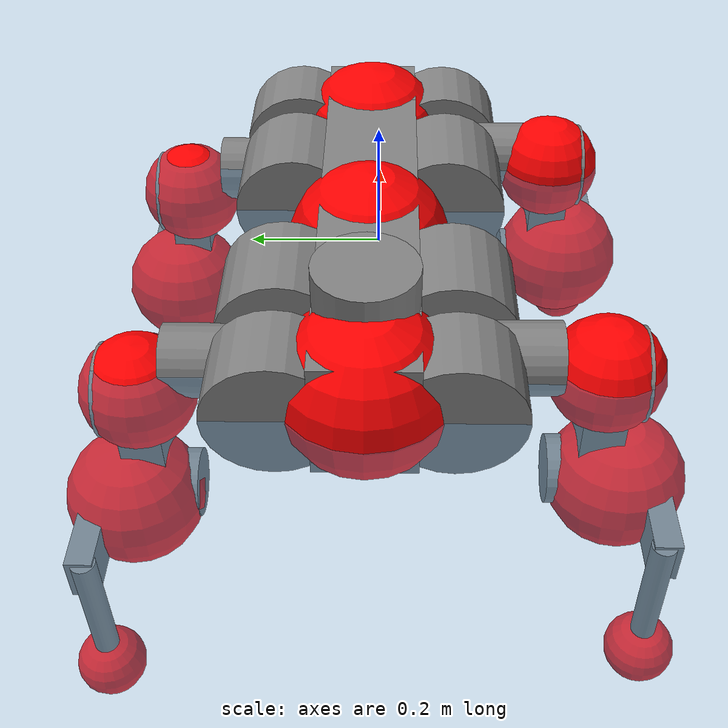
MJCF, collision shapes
<mujoco model="anymal_c">
  <compiler angle="radian" assetdir="assets" balanceinertia="true" inertiafromgeom="false"/>

  <option timestep="0.005" density="1.2" viscosity="2e-05"/>

  <size nkey="1"/>

  <visual>
    <quality shadowsize="8192"/>
    <map shadowclip="0.5"/>
  </visual>

  <default>
    <default class="/">
      <material specular="0" shininess="0.25"/>
      <geom contype="0" conaffinity="0" group="1" solref="-1000 -80"/>
      <site size="0.01 0.005 0.005" group="5"/>
      <general forcelimited="true" forcerange="-80 80" biastype="affine" gainprm="80" biasprm="0 -80 -2"/>
      <default class="anymal_c">
        <joint armature="0.01" damping="0.01" frictionloss="0.1"/>
        <default class="visual">
          <geom type="mesh" group="2"/>
          <default class="visual_zflip"/>
        </default>
        <default class="collision">
          <geom type="cylinder" group="3"/>
          <default class="foot">
            <geom size="0.03 0 0" type="sphere" condim="6" priority="1" friction="0.8 0.02 0.01" solimp="0.015 1 0.03"/>
          </default>
        </default>
      </default>
      <default class="reward_collision_sphere">
        <geom group="5" rgba="1 0 0 1"/>
      </default>
    </default>
  </default>

  <asset>
    <texture type="skybox" colorspace="auto" name="//unnamed_texture_0" builtin="gradient" rgb1="0.95 0.95 0.95" rgb2="0.95 0.95 0.95" width="100" height="600"/>
    <texture type="2d" colorspace="auto" name="texplane" builtin="checker" rgb1="0.345 0.575 0.748" rgb2="0.345 0.575 0.748" markrgb="1 1 1" width="512" height="512"/>
    <texture type="2d" colorspace="linear" name="base" file="base.png"/>
    <texture type="2d" colorspace="linear" name="top_shell" file="top_shell.png"/>
    <texture type="2d" colorspace="linear" name="bottom_shell" file="bottom_shell.png"/>
    <texture type="2d" colorspace="linear" name="remote" file="remote.png"/>
    <texture type="2d" colorspace="linear" name="hatch" file="hatch.png"/>
    <texture type="2d" colorspace="linear" name="handle" file="handle.png"/>
    <texture type="2d" colorspace="linear" name="face" file="face.png"/>
    <texture type="2d" colorspace="linear" name="battery" file="battery.png"/>
    <texture type="2d" colorspace="linear" name="lidar_cage" file="lidar_cage.png"/>
    <texture type="2d" colorspace="linear" name="depth_camera" file="depth_camera.png"/>
    <texture type="2d" colorspace="linear" name="wide_angle_camera" file="wide_angle_camera.png"/>
    <texture type="2d" colorspace="linear" name="lidar" file="lidar.png"/>
    <texture type="2d" colorspace="linear" name="drive" file="drive.png"/>
    <texture type="2d" colorspace="linear" name="hip_l" file="hip_l.png"/>
    <texture type="2d" colorspace="linear" name="shank_l" file="shank_l.png"/>
    <texture type="2d" colorspace="linear" name="foot" file="foot.png"/>
    <texture type="2d" colorspace="linear" name="thigh" file="thigh.png"/>
    <texture type="2d" colorspace="linear" name="shank_r" file="shank_r.png"/>
    <texture type="2d" colorspace="linear" name="hip_r" file="hip_r.png"/>
    <material name="MatPlane" class="/" texture="texplane" texuniform="true" texrepeat="2 2" specular="0.9" shininess="0.5"/>
    <material name="black_plastic" class="/" rgba="0.007 0.007 0.007 1"/>
    <material name="green" class="/" rgba="0.052 0.178 0.033 1"/>
    <material name="red" class="/" rgba="0.178 0.006 0.005 1"/>
    <material name="yellow" class="/" rgba="0.178 0.119 0.006 1"/>
    <material name="lwl" class="/" rgba="0.8 0.8 0.8 1"/>
    <material name="base" class="/" texture="base"/>
    <material name="top_shell" class="/" texture="top_shell"/>
    <material name="bottom_shell" class="/" texture="bottom_shell"/>
    <material name="hip_l" class="/" texture="hip_l"/>
    <material name="thigh" class="/" texture="thigh"/>
    <material name="shank_l" class="/" texture="shank_l"/>
    <material name="foot" class="/" texture="foot"/>
    <material name="hip_r" class="/" texture="hip_r"/>
    <material name="shank" class="/" texture="shank_r"/>
    <material name="hatch" class="/" texture="hatch"/>
    <material name="remote" class="/" texture="remote"/>
    <material name="handle" class="/" texture="handle"/>
    <material name="face" class="/" texture="face"/>
    <material name="depth_camera" class="/" texture="depth_camera"/>
    <material name="wide_angle_camera" class="/" texture="wide_angle_camera"/>
    <material name="battery" class="/" texture="battery"/>
    <material name="lidar_cage" class="/" texture="lidar_cage"/>
    <material name="lidar" class="/" texture="lidar"/>
    <material name="drive" class="/" texture="drive"/>
    <mesh name="base_0" class="/" file="base_0.obj"/>
    <mesh name="base_1" class="/" file="base_1.obj"/>
    <mesh name="base_2" class="/" file="base_2.obj"/>
    <mesh name="base_3" class="/" file="base_3.obj"/>
    <mesh name="base_4" class="/" file="base_4.obj"/>
    <mesh name="base_5" class="/" file="base_5.obj"/>
    <mesh name="top_shell" class="/" file="top_shell.obj"/>
    <mesh name="bottom_shell" class="/" file="bottom_shell.obj"/>
    <mesh name="remote" class="/" file="remote.obj"/>
    <mesh name="handle" class="/" file="handle.obj"/>
    <mesh name="face" class="/" file="face.obj"/>
    <mesh name="wide_angle_camera" class="/" file="wide_angle_camera.obj"/>
    <mesh name="depth_camera" class="/" file="depth_camera.obj"/>
    <mesh name="battery" class="/" file="battery.obj"/>
    <mesh name="lidar_cage" class="/" file="lidar_cage.obj"/>
    <mesh name="lidar" class="/" file="lidar.obj"/>
    <mesh name="drive" class="/" file="drive.obj"/>
    <mesh name="hip_l" class="/" file="hip_l.obj"/>
    <mesh name="thigh" class="/" file="thigh.obj"/>
    <mesh name="shank_l" class="/" file="shank_l.obj"/>
    <mesh name="foot" class="/" file="foot.obj"/>
    <mesh name="hip_r" class="/" file="hip_r.obj"/>
    <mesh name="hatch" class="/" file="hatch.obj"/>
    <mesh name="shank_r" class="/" file="shank_r.obj"/>
  </asset>

  <worldbody>
    <geom name="floor" class="/" size="100 100 0.125" type="plane" group="0" material="MatPlane"/>
    <light name="toplight_shadow" class="/" pos="0 0 5" dir="0.0990148 0.0990148 -0.990148" type="directional" ambient="0.04 0.04 0.04" diffuse="0.55 0.55 0.55" specular="0.12 0.12 0.12"/>
    <light name="toplight_fill" class="/" pos="0 0 5" dir="0.0990148 0.0990148 -0.990148" type="directional" castshadow="false" ambient="0.04 0.04 0.04" diffuse="0.3 0.3 0.3" specular="0.08 0.08 0.08"/>
    <body name="trunk" childclass="anymal_c" pos="0.00239323 0.0149007 -0.00520709" quat="1 0.000217401 0.000171701 -5.34985e-05">
      <inertial pos="-0.00691997 0.0156546 0.0396884" quat="0.556985 0.514924 0.421879 0.496628" mass="23.6945" diaginertia="0.141279 13.4308 0.0386463"/>
      <joint name="//unnamed_joint_0" type="free" armature="0" damping="0" frictionloss="0"/>
      <geom name="//unnamed_geom_1" class="visual" material="green" mesh="base_0"/>
      <geom name="//unnamed_geom_2" class="visual" material="yellow" mesh="base_1"/>
      <geom name="//unnamed_geom_3" class="visual" material="red" mesh="base_2"/>
      <geom name="//unnamed_geom_4" class="visual" material="black_plastic" mesh="base_3"/>
      <geom name="//unnamed_geom_5" class="visual" material="lwl" mesh="base_4"/>
      <geom name="//unnamed_geom_6" class="visual" material="base" mesh="base_5"/>
      <geom name="trunk_1" class="collision" size="0.310564 0.0749638 0.0963821" type="box"/>
      <geom name="trunk_2" class="collision" size="0.0963821 0.0776411" pos="0.157286 0.124575 0" quat="0.707107 0 0.707107 0"/>
      <geom name="trunk_3" class="collision" size="0.0963821 0.0776411" pos="-0.157286 0.124575 0" quat="0.707107 0 0.707107 0"/>
      <geom name="trunk_4" class="collision" size="0.0963821 0.0776411" pos="0.157286 -0.124575 0" quat="0.707107 0 0.707107 0"/>
      <geom name="trunk_5" class="collision" size="0.0963821 0.0776411" pos="-0.157286 -0.124575 0" quat="0.707107 0 0.707107 0"/>
      <geom name="//unnamed_geom_12" class="visual" material="top_shell" mesh="top_shell"/>
      <geom name="//unnamed_geom_13" class="visual" material="bottom_shell" mesh="bottom_shell"/>
      <geom name="//unnamed_geom_14" class="visual" material="remote" mesh="remote"/>
      <geom name="//unnamed_geom_15" class="visual" material="handle" mesh="handle"/>
      <geom name="//unnamed_geom_16" class="visual" pos="0.299748 0 0" quat="1 0 0 0" material="face" mesh="face"/>
      <geom name="trunk_6" class="collision" size="0.0589002 0.0749638 0.0963821" pos="0.339522 0 0" type="box"/>
      <geom name="//unnamed_geom_18" class="collision" size="0.0963821 0.0589002" pos="0.339522 0.124575 0" quat="0.707107 0 0.707107 0"/>
      <geom name="//unnamed_geom_19" class="collision" size="0.0963821 0.0589002" pos="0.339522 -0.124575 0" quat="0.707107 0 0.707107 0"/>
      <geom name="//unnamed_geom_20" class="visual" pos="0.333844 0 -0.0206297" quat="0.965926 0 0.258819 0" material="depth_camera" mesh="depth_camera"/>
      <geom name="//unnamed_geom_21" class="visual" pos="0.370979 0 0.0106278" material="wide_angle_camera" mesh="wide_angle_camera"/>
      <geom name="//unnamed_geom_22" class="visual_zflip" pos="-0.299748 0 0" quat="0 0 0 1" material="face" mesh="face"/>
      <geom name="trunk_7" class="collision" size="0.0589002 0.0749638 0.0963821" pos="-0.339522 0 0" quat="0 0 0 1" type="box"/>
      <geom name="//unnamed_geom_24" class="collision" size="0.0963821 0.0589002" pos="-0.339522 -0.124575 0" quat="0 -0.707107 0 0.707107"/>
      <geom name="//unnamed_geom_25" class="collision" size="0.0963821 0.0589002" pos="-0.339522 0.124575 0" quat="0 -0.707107 0 0.707107"/>
      <geom name="//unnamed_geom_26" class="visual" pos="-0.333844 0 -0.0206297" quat="0 -0.258819 0 0.965926" material="depth_camera" mesh="depth_camera"/>
      <geom name="//unnamed_geom_27" class="visual_zflip" pos="-0.370979 0 0.0106278" quat="0 0 0 1" material="wide_angle_camera" mesh="wide_angle_camera"/>
      <geom name="//unnamed_geom_28" class="visual" material="battery" mesh="battery"/>
      <geom name="//unnamed_geom_29" class="visual" pos="0 0.149934 0.0207241" quat="0.683013 -0.183013 0.183013 0.683013" material="depth_camera" mesh="depth_camera"/>
      <geom name="//unnamed_geom_30" class="visual" pos="0 -0.149934 0.0207241" quat="0.683013 0.183013 0.183013 -0.683013" material="depth_camera" mesh="depth_camera"/>
      <geom name="//unnamed_geom_31" class="visual" pos="-0.263229 0 0.0521804" quat="1 0 0 0" material="lidar_cage" mesh="lidar_cage"/>
      <geom name="trunk_8" class="collision" size="0.0749638 0.0642547" pos="-0.263229 0 0.0947766"/>
      <geom name="//unnamed_geom_33" class="visual" pos="-0.263229 0.000415065 0.100953" quat="0.707107 0 0 -0.707107" material="lidar" mesh="lidar"/>
      <geom name="//unnamed_geom_34" class="visual" pos="0.216874 0.184703 1.84525e-08" quat="0.258819 0.965926 0 0" material="drive" mesh="drive"/>
      <geom name="//unnamed_geom_35" class="visual" pos="0.216874 -0.184703 -1.84525e-08" quat="0.258819 -0.965926 0 0" material="drive" mesh="drive"/>
      <geom name="//unnamed_geom_36" class="visual" pos="-0.216874 0.184703 -1.84525e-08" quat="0 0 0.965926 -0.258819" material="drive" mesh="drive"/>
      <geom name="//unnamed_geom_37" class="visual" pos="-0.216874 -0.184703 1.84525e-08" quat="0 0 -0.965926 -0.258819" material="drive" mesh="drive"/>
      <geom name="//unnamed_geom_38" class="visual" pos="0.0838861 0 0.0518254" quat="1 0 0 0" material="hatch" mesh="hatch"/>
      <geom name="//unnamed_geom_39" class="reward_collision_sphere" size="0.128509"/>
      <geom name="//unnamed_geom_40" class="reward_collision_sphere" size="0.128509" pos="0.32542 0 0"/>
      <geom name="//unnamed_geom_41" class="reward_collision_sphere" size="0.128509" pos="-0.32542 0 0"/>
      <site name="imu" pos="0.107104 -0.0460145 0.107278" size="0.0107091"/>
      <camera name="track" pos="0 -3.55929 0" quat="0.707107 0.707107 0 0" mode="trackcom"/>
      <camera name="ego_camera" pos="0.32542 0 -0.0283975" quat="-0.5 -0.5 0.5 0.5"/>
      <body name="LF_HIP" pos="0.203539 0.165961 -0.0168397" quat="0.259457 0.965724 0.00145982 -0.00750205">
        <inertial pos="0.0473214 -0.025961 -0.0172431" quat="-0.122105 0.723242 -0.151514 0.662612" mass="4.23122" diaginertia="0.00112143 0.0951623 0.000561222"/>
        <joint name="LF_HAA" pos="0 0 0" axis="0.999999 -0.00141729 -0.000728076" range="-1.1088 0.255414" armature="0.013794" damping="0.0841028" frictionloss="0.0349371"/>
        <geom name="//unnamed_geom_42" class="visual" pos="0 0.00108548 -0.000178289" quat="0.258819 -0.965926 0 0" material="hip_l" mesh="hip_l"/>
        <geom name="//unnamed_geom_43" class="visual" pos="0.043317 -0.066018 -0.0302034" quat="0.183013 -0.683013 0.683013 0.183013" material="drive" mesh="drive"/>
        <geom name="//unnamed_geom_44" class="collision" size="0.0535456 0.0749638" pos="0.043317 -0.0212842 -0.00490212" quat="-0.353553 -0.612372 0.612372 -0.353553"/>
        <body name="LF_THIGH" pos="0.040737 -0.14838 -0.0226079" quat="0.188173 -0.679232 0.684793 0.185185">
          <inertial pos="0.0083184 -0.0125514 -0.180801" quat="0.993212 0.0236156 -0.1129 0.0150146" mass="3.75227" diaginertia="0.00527727 0.494538 0.000791709"/>
          <joint name="LF_HFE" pos="0 0 0" axis="0.997129 0.0735976 0.017824" range="-3.36083 2.78904" armature="0.0023621" damping="0" frictionloss="0.0550332"/>
          <geom name="//unnamed_geom_45" class="visual" pos="-0.0210199 -3.31225e-05 0" quat="0.707107 0 0 -0.707107" material="thigh" mesh="thigh"/>
          <geom name="//unnamed_geom_46" class="collision" size="0.0696093 0.0428365" pos="0.0289262 0 0" quat="0.5 0.5 -0.5 -0.5"/>
          <geom name="//unnamed_geom_47" class="collision" size="0.0401592 0.0321274 0.151335" pos="0.0216947 0 -0.100324" quat="0.707107 0 0 -0.707107" type="box"/>
          <geom name="//unnamed_geom_48" class="visual" pos="0.0725325 0 -0.202332" quat="1 0 0 0" material="drive" mesh="drive"/>
          <geom name="//unnamed_geom_49" class="collision" size="0.0535456 0.0749638" pos="0.0219116 0 -0.202332" quat="0.707107 0 0.707107 0"/>
          <geom name="//unnamed_geom_50" class="reward_collision_sphere" size="0.085673" pos="0.0180789 0 0"/>
          <body name="LF_SHANK" pos="0.0814961 0.0173906 -0.192616" quat="0.999983 -0.00397222 0.00398132 0.00165754">
            <inertial pos="-0.00924777 -0.109897 -0.0385687" quat="0.994008 -0.106009 -0.00722405 -0.0256501" mass="0.751656" diaginertia="0.00230505 0.123986 0.000240186"/>
            <joint name="LF_KFE" pos="0 0 0" axis="0.999868 0.0119398 0.0110056" range="-2.77106 3.08268" armature="0.0172033" damping="0.0249699" frictionloss="0.116582"/>
            <geom name="//unnamed_geom_51" class="visual" pos="-0.00685414 -0.0365466 0" quat="0.707107 0 0 -0.707107" material="shank_l" mesh="shank_l"/>
            <geom name="LF_kfe_act" class="collision" size="0.0642547 0.0214182" pos="0.0144631 0 0" quat="0.5 0.5 -0.5 -0.5"/>
            <geom name="//unnamed_geom_53" class="collision" size="0.0615764 0.0361433 0.0203473" pos="0.0144631 -0.102328 0" quat="0.5 0.5 -0.5 -0.5" type="box"/>
            <geom name="//unnamed_geom_54" class="visual" pos="0.00943884 -0.168297 -0.239938" quat="0.382683 0 0 -0.92388" material="foot" mesh="foot"/>
            <geom name="LF_calf" class="collision" size="0.018741 0.151268" pos="0.00943718 -0.15652 -0.119969" quat="0.707107 0 0 -0.707107"/>
            <geom name="LF_foot" class="foot" size="0.0345773" pos="0.00943718 -0.15652 -0.223964" quat="0.707107 0 0 -0.707107"/>
            <geom name="//unnamed_geom_57" class="reward_collision_sphere" size="0.107091" pos="-0.0361578 0 0"/>
            <geom name="//unnamed_geom_58" class="reward_collision_sphere" size="0.0535456" pos="0.00943718 -0.15652 -0.223964"/>
            <site name="LF_foot" class="foot" pos="0.00943718 -0.15652 -0.223964" quat="0.707107 0 0 -0.707107" size="0.0107091"/>
          </body>
        </body>
      </body>
      <body name="RF_HIP" pos="0.213943 -0.174021 0.0103481" quat="0.258886 -0.965908 0.000139333 4.3882e-05">
        <inertial pos="0.0506317 0.0196556 -0.0136327" quat="0.129348 0.693391 0.115123 0.699446" mass="3.85606" diaginertia="0.00120447 0.102348 0.000449766"/>
        <joint name="RF_HAA" pos="0 0 0" axis="0.997799 0.0598841 -0.0284963" stiffness="0.0464012" range="-0.443413 0.796543" armature="0.00658306" damping="0" frictionloss="0.056745"/>
        <geom name="//unnamed_geom_59" class="visual" pos="0 -0.00108547 -0.000178289" quat="0.258819 0.965926 0 0" material="hip_r" mesh="hip_r"/>
        <geom name="//unnamed_geom_60" class="visual" pos="0.0433171 0.066018 -0.0302034" quat="0.183013 0.683013 0.683013 -0.183013" material="drive" mesh="drive"/>
        <geom name="//unnamed_geom_61" class="collision" size="0.0535456 0.0749638" pos="0.043317 0.0212842 -0.00490212" quat="-0.353553 0.612372 0.612372 0.353553"/>
        <body name="RF_THIGH" pos="0.0259406 0.110238 -0.0419925" quat="0.186137 0.685724 0.67926 -0.18369">
          <inertial pos="0.0335684 0.0190623 -0.16985" quat="0.987675 0.0148271 -0.137961 0.0724163" mass="2.50048" diaginertia="0.00450661 0.429241 0.000681292"/>
          <joint name="RF_HFE" pos="0 0 0" axis="1 0.000469721 0.000293242" stiffness="0.0478666" range="-2.78516 3.17664" armature="0.00781634" damping="0" frictionloss="0.104788"/>
          <geom name="//unnamed_geom_62" class="visual" pos="-0.0210199 -3.31225e-05 0" quat="0.707107 0 0 -0.707107" material="thigh" mesh="thigh"/>
          <geom name="//unnamed_geom_63" class="collision" size="0.0696093 0.0428365" pos="0.0289262 0 0" quat="0.5 0.5 0.5 0.5"/>
          <geom name="//unnamed_geom_64" class="collision" size="0.0401592 0.0321274 0.151335" pos="0.0216947 0 -0.100324" quat="0.707107 0 0 0.707107" type="box"/>
          <geom name="//unnamed_geom_65" class="visual" pos="0.0725325 0 -0.202332" quat="1 0 0 0" material="drive" mesh="drive"/>
          <geom name="//unnamed_geom_66" class="collision" size="0.0535456 0.0749638" pos="0.0219116 0 -0.202332" quat="0.707107 0 0.707107 0"/>
          <geom name="//unnamed_geom_67" class="reward_collision_sphere" size="0.085673" pos="0.0180789 0 0"/>
          <body name="RF_SHANK" pos="0.0904825 -0.00476471 -0.189616" quat="0.999967 0.00102357 0.003657 -0.00718305">
            <inertial pos="-0.00578423 0.106984 -0.0709557" quat="0.988027 0.135468 0.054255 0.0500695" mass="0.669099" diaginertia="0.001801 0.159093 0.000177376"/>
            <joint name="RF_KFE" pos="0 0 0" axis="0.995573 -0.0370355 -0.0863819" stiffness="0.0516714" range="-3.26641 3.08949" armature="0.00210665" damping="0" frictionloss="0.193366"/>
            <geom name="//unnamed_geom_68" class="visual" pos="-0.00685411 0.0365466 0" quat="0.707107 0 0 0.707107" material="shank" mesh="shank_r"/>
            <geom name="RF_kfe_act" class="collision" size="0.0642547 0.0214182" pos="0.0144631 0 0" quat="0.5 0.5 0.5 0.5"/>
            <geom name="//unnamed_geom_70" class="collision" size="0.0615764 0.0361433 0.0203473" pos="0.0144631 0.102328 0" quat="0.5 0.5 0.5 0.5" type="box"/>
            <geom name="//unnamed_geom_71" class="visual" pos="0.00943552 0.168297 -0.239938" quat="0.382683 0 0 0.92388" material="foot" mesh="foot"/>
            <geom name="RF_calf" class="collision" size="0.018741 0.151268" pos="0.00943718 0.15652 -0.119969" quat="0.707107 0 0 0.707107"/>
            <geom name="RF_foot" class="foot" size="0.0432059" pos="0.00943718 0.15652 -0.223964" quat="0.707107 0 0 0.707107"/>
            <geom name="//unnamed_geom_74" class="reward_collision_sphere" size="0.107091" pos="-0.0361578 0 0"/>
            <geom name="//unnamed_geom_75" class="reward_collision_sphere" size="0.0535456" pos="0.00943718 0.15652 -0.223964"/>
            <site name="RF_foot" class="foot" pos="0.00943718 0.15652 -0.223964" quat="0.707107 0 0 0.707107" size="0.0107091"/>
          </body>
        </body>
      </body>
      <body name="LH_HIP" pos="-0.222291 0.191075 -0.00506967" quat="0.0036525 0.00273151 0.966155 -0.257921">
        <inertial pos="0.038417 0.0428343 -0.0177838" quat="0.142232 0.694866 0.159471 0.686659" mass="2.6536" diaginertia="0.000983283 0.0768583 0.000533498"/>
        <joint name="LH_HAA" pos="0 0 0" axis="0.99915 -0.0400644 0.00970854" stiffness="0.0396608" range="-0.642987 0.924823" armature="0.00906868" damping="0" frictionloss="0.0692026"/>
        <geom name="//unnamed_geom_76" class="visual" pos="0 -0.00108547 -0.000178289" quat="-0.258819 -0.965926 0 0" material="hip_r" mesh="hip_r"/>
        <geom name="//unnamed_geom_77" class="visual" pos="0.0433171 0.066018 -0.0302034" quat="0.183013 0.683013 0.683013 -0.183013" material="drive" mesh="drive"/>
        <geom name="//unnamed_geom_78" class="collision" size="0.0535456 0.0749638" pos="0.043317 0.0212842 -0.00490212" quat="-0.353553 0.612372 0.612372 0.353553"/>
        <body name="LH_THIGH" pos="0.0561583 0.129789 -0.0119606" quat="0.17992 0.684218 0.682231 -0.184487">
          <inertial pos="0.0199531 0.00537229 -0.156499" quat="0.995915 -0.0230186 -0.0820879 0.0297428" mass="2.51311" diaginertia="0.00579291 0.408309 0.00070627"/>
          <joint name="LH_HFE" pos="0 0 0" axis="0.999958 -0.00751013 0.00518687" stiffness="0.023439" range="-2.84339 2.88299" armature="0.0154931" damping="0.0896288" frictionloss="0.135487"/>
          <geom name="//unnamed_geom_79" class="visual" pos="-0.0210199 -3.31225e-05 0" quat="0.707107 0 0 -0.707107" material="thigh" mesh="thigh"/>
          <geom name="//unnamed_geom_80" class="collision" size="0.0696093 0.0428365" pos="0.0289262 0 0" quat="0.5 0.5 -0.5 -0.5"/>
          <geom name="//unnamed_geom_81" class="collision" size="0.0401592 0.0321274 0.151335" pos="0.0216947 0 -0.100324" quat="0.707107 0 0 -0.707107" type="box"/>
          <geom name="//unnamed_geom_82" class="visual" pos="0.0725325 0 -0.202332" quat="1 0 0 0" material="drive" mesh="drive"/>
          <geom name="//unnamed_geom_83" class="collision" size="0.0535456 0.0749638" pos="0.0219116 0 -0.202332" quat="0.707107 0 0.707107 0"/>
          <geom name="//unnamed_geom_84" class="reward_collision_sphere" size="0.085673" pos="0.0180789 0 0"/>
          <body name="LH_SHANK" pos="0.0850237 0.0192085 -0.209072" quat="0.999992 0.00266873 0.00281637 -0.000516359">
            <inertial pos="0.00912638 0.106731 -0.0511308" quat="0.9948 0.09669 -0.0105602 0.0302213" mass="0.511835" diaginertia="0.00134623 0.146632 0.000166551"/>
            <joint name="LH_KFE" pos="0 0 0" axis="0.997715 -0.0180863 0.0650916" range="-3.51618 3.43357" armature="0.00902044" damping="0.0593854" frictionloss="0.12467"/>
            <geom name="//unnamed_geom_85" class="visual" pos="-0.00685411 0.0365466 0" quat="-0.707107 0 0 -0.707107" material="shank" mesh="shank_r"/>
            <geom name="LH_kfe_act" class="collision" size="0.0642547 0.0214182" pos="0.0144631 0 0" quat="0.5 0.5 -0.5 -0.5"/>
            <geom name="//unnamed_geom_87" class="collision" size="0.0615764 0.0361433 0.0203473" pos="0.0144631 0.102328 0" quat="0.5 0.5 -0.5 -0.5" type="box"/>
            <geom name="//unnamed_geom_88" class="visual" pos="0.00943552 0.168297 -0.239938" quat="-0.382683 0 0 -0.92388" material="foot" mesh="foot"/>
            <geom name="LH_calf" class="collision" size="0.018741 0.151268" pos="0.00943718 0.15652 -0.119969" quat="0.707107 0 0 -0.707107"/>
            <geom name="LH_foot" class="foot" size="0.0203494" pos="0.00943718 0.15652 -0.223964" quat="0.707107 0 0 -0.707107"/>
            <geom name="//unnamed_geom_91" class="reward_collision_sphere" size="0.107091" pos="-0.0361578 0 0"/>
            <geom name="//unnamed_geom_92" class="reward_collision_sphere" size="0.0535456" pos="0.00943718 0.15652 -0.223964"/>
            <site name="LH_foot" class="foot" pos="0.00943718 0.15652 -0.223964" quat="0.707107 0 0 -0.707107" size="0.0107091"/>
          </body>
        </body>
      </body>
      <body name="RH_HIP" pos="-0.225795 -0.179205 0.00818531" quat="0.00280822 -0.00449858 -0.96748 -0.252891">
        <inertial pos="0.0327592 -0.043256 0.00740477" quat="-0.13322 0.735762 -0.135499 0.650036" mass="2.7404" diaginertia="0.000801961 0.0653173 0.000393279"/>
        <joint name="RH_HAA" pos="0 0 0" axis="0.996569 0.0827539 0.00145303" range="-0.601558 0.836682" armature="0.0115465" damping="0.0517587" frictionloss="0.0774331"/>
        <geom name="//unnamed_geom_93" class="visual" pos="0 0.00108548 -0.000178289" quat="-0.258819 0.965926 0 0" material="hip_l" mesh="hip_l"/>
        <geom name="//unnamed_geom_94" class="visual" pos="0.043317 -0.066018 -0.0302034" quat="-0.183013 0.683013 -0.683013 -0.183013" material="drive" mesh="drive"/>
        <geom name="//unnamed_geom_95" class="collision" size="0.0535456 0.0749638" pos="0.043317 -0.0212842 -0.00490212" quat="0.353553 0.612372 -0.612372 0.353553"/>
        <body name="RH_THIGH" pos="0.040358 -0.143107 -0.0397872" quat="-0.181188 0.6886 -0.677306 -0.185088">
          <inertial pos="0.020949 0.0171536 -0.186916" quat="0.989027 -0.0291864 -0.0990972 0.105612" mass="4.1308" diaginertia="0.00647942 0.587679 0.000868195"/>
          <joint name="RH_HFE" pos="0 0 0" axis="0.996123 -0.0749676 -0.0460365" stiffness="0.04828" range="-3.27177 2.89905" armature="0.0127899" damping="0" frictionloss="0.0704648"/>
          <geom name="//unnamed_geom_96" class="visual" pos="-0.0210199 -3.31225e-05 0" quat="0.707107 0 0 -0.707107" material="thigh" mesh="thigh"/>
          <geom name="//unnamed_geom_97" class="collision" size="0.0696093 0.0428365" pos="0.0289262 0 0" quat="0.5 0.5 0.5 0.5"/>
          <geom name="//unnamed_geom_98" class="collision" size="0.0401592 0.0321274 0.151335" pos="0.0216947 0 -0.100324" quat="0.707107 0 0 0.707107" type="box"/>
          <geom name="//unnamed_geom_99" class="visual" pos="0.0725325 0 -0.202332" quat="1 0 0 0" material="drive" mesh="drive"/>
          <geom name="//unnamed_geom_100" class="collision" size="0.0535456 0.0749638" pos="0.0219116 0 -0.202332" quat="0.707107 0 0.707107 0"/>
          <geom name="//unnamed_geom_101" class="reward_collision_sphere" size="0.085673" pos="0.0180789 0 0"/>
          <body name="RH_SHANK" pos="0.092483 -0.00774624 -0.209041" quat="0.999985 0.00319809 -0.00159007 0.00412591">
            <inertial pos="-0.0155288 -0.108413 -0.0487349" quat="0.99387 -0.0894265 -0.022402 -0.0610196" mass="0.73541" diaginertia="0.001517 0.175664 0.000176509"/>
            <joint name="RH_KFE" pos="0 0 0" axis="0.996083 -0.0535911 0.0703326" stiffness="0.0576074" range="-2.8206 2.78998" armature="0.0195864" damping="0.0184019" frictionloss="0.0910574"/>
            <geom name="//unnamed_geom_102" class="visual" pos="-0.00685414 -0.0365466 0" quat="0.707107 0 0 -0.707107" material="shank_l" mesh="shank_l"/>
            <geom name="RH_kfe_act" class="collision" size="0.0642547 0.0214182" pos="0.0144631 0 0" quat="0.5 0.5 0.5 0.5"/>
            <geom name="//unnamed_geom_104" class="collision" size="0.0615764 0.0361433 0.0203473" pos="0.0144631 -0.102328 0" quat="0.5 0.5 0.5 0.5" type="box"/>
            <geom name="//unnamed_geom_105" class="visual" pos="0.00943884 -0.168297 -0.239938" quat="0.382683 0 0 -0.92388" material="foot" mesh="foot"/>
            <geom name="RH_calf" class="collision" size="0.018741 0.151268" pos="0.00943718 -0.15652 -0.119969" quat="0.707107 0 0 0.707107"/>
            <geom name="RH_foot" class="foot" size="0.0467632" pos="0.00943718 -0.15652 -0.223964" quat="0.707107 0 0 0.707107"/>
            <geom name="//unnamed_geom_108" class="reward_collision_sphere" size="0.107091" pos="-0.0361578 0 0"/>
            <geom name="//unnamed_geom_109" class="reward_collision_sphere" size="0.0535456" pos="0.00943718 -0.15652 -0.223964"/>
            <site name="RH_foot" class="foot" pos="0.00943718 -0.15652 -0.223964" quat="0.707107 0 0 0.707107" size="0.0107091"/>
          </body>
        </body>
      </body>
    </body>
  </worldbody>

  <contact>
    <pair class="/" geom1="floor" geom2="LF_foot" name="//unnamed_contact_0"/>
    <pair class="/" geom1="floor" geom2="RF_foot" name="//unnamed_contact_1"/>
    <pair class="/" geom1="floor" geom2="LH_foot" name="//unnamed_contact_2"/>
    <pair class="/" geom1="floor" geom2="RH_foot" name="//unnamed_contact_3"/>
  </contact>

  <actuator>
    <general name="LF_HAA" class="/" joint="LF_HAA" forcerange="-23.625 23.625" gainprm="47.9249" biasprm="0 -47.9249 -1.62156"/>
    <general name="LF_HFE" class="/" joint="LF_HFE" forcerange="-129.163 129.163" gainprm="47.9249" biasprm="0 -47.9249 -1.62156"/>
    <general name="LF_KFE" class="/" joint="LF_KFE" forcerange="-113.911 113.911" gainprm="47.9249" biasprm="0 -47.9249 -1.62156"/>
    <general name="RF_HAA" class="/" joint="RF_HAA" forcerange="-29.0135 29.0135" gainprm="47.9249" biasprm="0 -47.9249 -1.62156"/>
    <general name="RF_HFE" class="/" joint="RF_HFE" forcerange="-28.9 28.9" gainprm="47.9249" biasprm="0 -47.9249 -1.62156"/>
    <general name="RF_KFE" class="/" joint="RF_KFE" forcerange="-42.8173 42.8173" gainprm="47.9249" biasprm="0 -47.9249 -1.62156"/>
    <general name="LH_HAA" class="/" joint="LH_HAA" forcerange="-110.387 110.387" gainprm="47.9249" biasprm="0 -47.9249 -1.62156"/>
    <general name="LH_HFE" class="/" joint="LH_HFE" forcerange="-66.821 66.821" gainprm="47.9249" biasprm="0 -47.9249 -1.62156"/>
    <general name="LH_KFE" class="/" joint="LH_KFE" forcerange="-125.558 125.558" gainprm="47.9249" biasprm="0 -47.9249 -1.62156"/>
    <general name="RH_HAA" class="/" joint="RH_HAA" forcerange="-144.913 144.913" gainprm="47.9249" biasprm="0 -47.9249 -1.62156"/>
    <general name="RH_HFE" class="/" joint="RH_HFE" forcerange="-105.167 105.167" gainprm="47.9249" biasprm="0 -47.9249 -1.62156"/>
    <general name="RH_KFE" class="/" joint="RH_KFE" forcerange="-82.1959 82.1959" gainprm="47.9249" biasprm="0 -47.9249 -1.62156"/>
  </actuator>

  <sensor>
    <gyro site="imu" name="imu_angular_velocity"/>
    <velocimeter site="imu" name="imu_linear_velocity"/>
    <framelinvel objtype="site" objname="LF_foot" name="LF_foot_global_linear_velocity"/>
    <framelinvel objtype="site" objname="RF_foot" name="RF_foot_global_linear_velocity"/>
    <framelinvel objtype="site" objname="LH_foot" name="LH_foot_global_linear_velocity"/>
    <framelinvel objtype="site" objname="RH_foot" name="RH_foot_global_linear_velocity"/>
  </sensor>

  <keyframe>
    <key name="home" qpos="0 0 0.55 1 0 0 0 0 0.4 -0.8 0 -0.4 0.8 0 -0.4 0.8 0 0.4 -0.8"/>
  </keyframe>
</mujoco>
